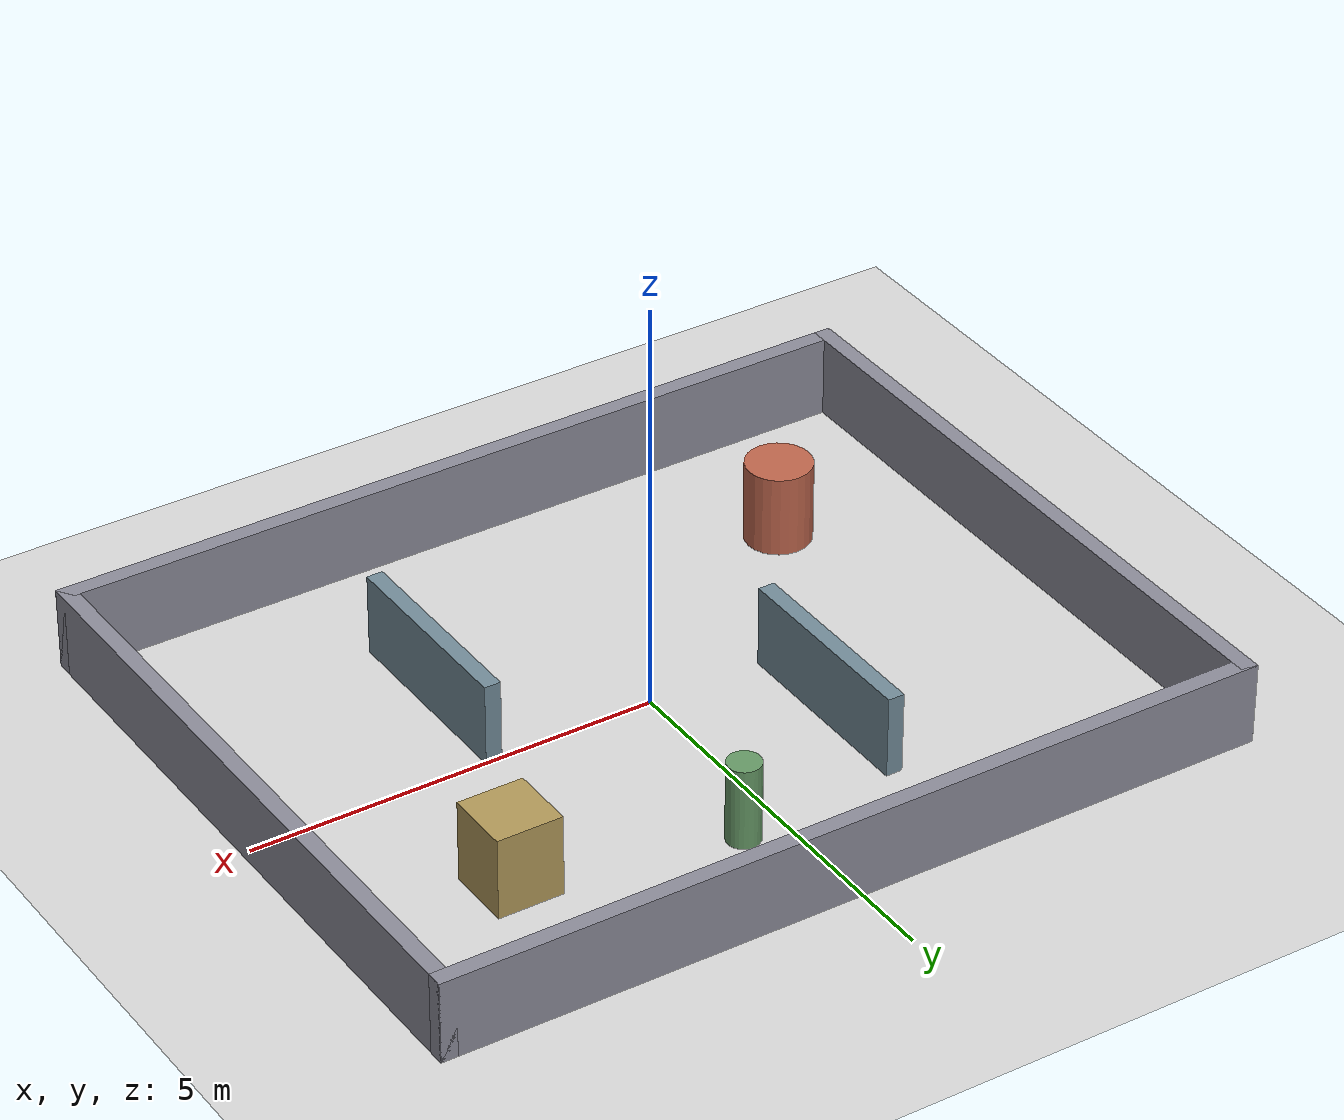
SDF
<?xml version="1.0" ?>
<sdf version="1.8">
  <world name="custom_map">
    <physics name="fast" type="ignored">
      <max_step_size>0.004</max_step_size>
      <real_time_factor>1.0</real_time_factor>
    </physics>

    <gravity>0 0 -9.8</gravity>
    <scene>
      <ambient>0.6 0.6 0.6 1</ambient>
      <background>0.8 0.85 0.9 1</background>
      <shadows>true</shadows>
    </scene>

    <light type="directional" name="sun">
      <cast_shadows>true</cast_shadows>
      <pose>0 0 10 0 0 0</pose>
      <diffuse>0.9 0.9 0.9 1</diffuse>
      <specular>0.2 0.2 0.2 1</specular>
      <direction>-0.5 0.1 -0.9</direction>
    </light>

    <model name="ground_plane">
      <static>true</static>
      <link name="link">
        <collision name="collision">
          <geometry><plane><normal>0 0 1</normal><size>100 100</size></plane></geometry>
          <surface>
            <friction><ode><mu>50</mu><mu2>50</mu2></ode></friction>
          </surface>
        </collision>
        <visual name="visual">
          <geometry><plane><normal>0 0 1</normal><size>100 100</size></plane></geometry>
          <material>
            <ambient>0.85 0.85 0.85 1</ambient>
            <diffuse>0.85 0.85 0.85 1</diffuse>
          </material>
        </visual>
      </link>
    </model>

    <model name="wall_north">
      <static>true</static>
      <pose>0 4 0.5 0 0 0</pose>
      <link name="link">
        <collision name="collision"><geometry><box><size>10.2 0.2 1.0</size></box></geometry></collision>
        <visual name="visual">
          <geometry><box><size>10.2 0.2 1.0</size></box></geometry>
          <material><ambient>0.55 0.55 0.6 1</ambient><diffuse>0.55 0.55 0.6 1</diffuse></material>
        </visual>
      </link>
    </model>
    <model name="wall_south">
      <static>true</static>
      <pose>0 -4 0.5 0 0 0</pose>
      <link name="link">
        <collision name="collision"><geometry><box><size>10.2 0.2 1.0</size></box></geometry></collision>
        <visual name="visual">
          <geometry><box><size>10.2 0.2 1.0</size></box></geometry>
          <material><ambient>0.55 0.55 0.6 1</ambient><diffuse>0.55 0.55 0.6 1</diffuse></material>
        </visual>
      </link>
    </model>
    <model name="wall_east">
      <static>true</static>
      <pose>5 0 0.5 0 0 0</pose>
      <link name="link">
        <collision name="collision"><geometry><box><size>0.2 8.2 1.0</size></box></geometry></collision>
        <visual name="visual">
          <geometry><box><size>0.2 8.2 1.0</size></box></geometry>
          <material><ambient>0.55 0.55 0.6 1</ambient><diffuse>0.55 0.55 0.6 1</diffuse></material>
        </visual>
      </link>
    </model>
    <model name="wall_west">
      <static>true</static>
      <pose>-5 0 0.5 0 0 0</pose>
      <link name="link">
        <collision name="collision"><geometry><box><size>0.2 8.2 1.0</size></box></geometry></collision>
        <visual name="visual">
          <geometry><box><size>0.2 8.2 1.0</size></box></geometry>
          <material><ambient>0.55 0.55 0.6 1</ambient><diffuse>0.55 0.55 0.6 1</diffuse></material>
        </visual>
      </link>
    </model>
    <model name="partition_a">
      <static>true</static>
      <pose>-1.5 1.25 0.5 0 0 0</pose>
      <link name="link">
        <collision name="collision"><geometry><box><size>0.2 2.5 1.0</size></box></geometry></collision>
        <visual name="visual">
          <geometry><box><size>0.2 2.5 1.0</size></box></geometry>
          <material><ambient>0.45 0.55 0.6 1</ambient><diffuse>0.45 0.55 0.6 1</diffuse></material>
        </visual>
      </link>
    </model>
    <model name="partition_b">
      <static>true</static>
      <pose>2.0 -1.25 0.5 0 0 0</pose>
      <link name="link">
        <collision name="collision"><geometry><box><size>0.2 2.5 1.0</size></box></geometry></collision>
        <visual name="visual">
          <geometry><box><size>0.2 2.5 1.0</size></box></geometry>
          <material><ambient>0.45 0.55 0.6 1</ambient><diffuse>0.45 0.55 0.6 1</diffuse></material>
        </visual>
      </link>
    </model>
    <model name="crate">
      <static>true</static>
      <pose>3.0 2.0 0.5 0 0 0</pose>
      <link name="link">
        <collision name="collision"><geometry><box><size>0.8 0.8 1.0</size></box></geometry></collision>
        <visual name="visual">
          <geometry><box><size>0.8 0.8 1.0</size></box></geometry>
          <material><ambient>0.7 0.6 0.35 1</ambient><diffuse>0.7 0.6 0.35 1</diffuse></material>
        </visual>
      </link>
    </model>
    <model name="barrel">
      <static>true</static>
      <pose>-3.0 -2.0 0.5 0 0 0</pose>
      <link name="link">
        <collision name="collision"><geometry><cylinder><radius>0.4</radius><length>1.0</length></cylinder></geometry></collision>
        <visual name="visual">
          <geometry><cylinder><radius>0.4</radius><length>1.0</length></cylinder></geometry>
          <material><ambient>0.75 0.4 0.3 1</ambient><diffuse>0.75 0.4 0.3 1</diffuse></material>
        </visual>
      </link>
    </model>
    <model name="pillar">
      <static>true</static>
      <pose>0.5 2.6 0.5 0 0 0</pose>
      <link name="link">
        <collision name="collision"><geometry><cylinder><radius>0.2</radius><length>1.0</length></cylinder></geometry></collision>
        <visual name="visual">
          <geometry><cylinder><radius>0.2</radius><length>1.0</length></cylinder></geometry>
          <material><ambient>0.4 0.6 0.4 1</ambient><diffuse>0.4 0.6 0.4 1</diffuse></material>
        </visual>
      </link>
    </model>
  </world>
</sdf>
